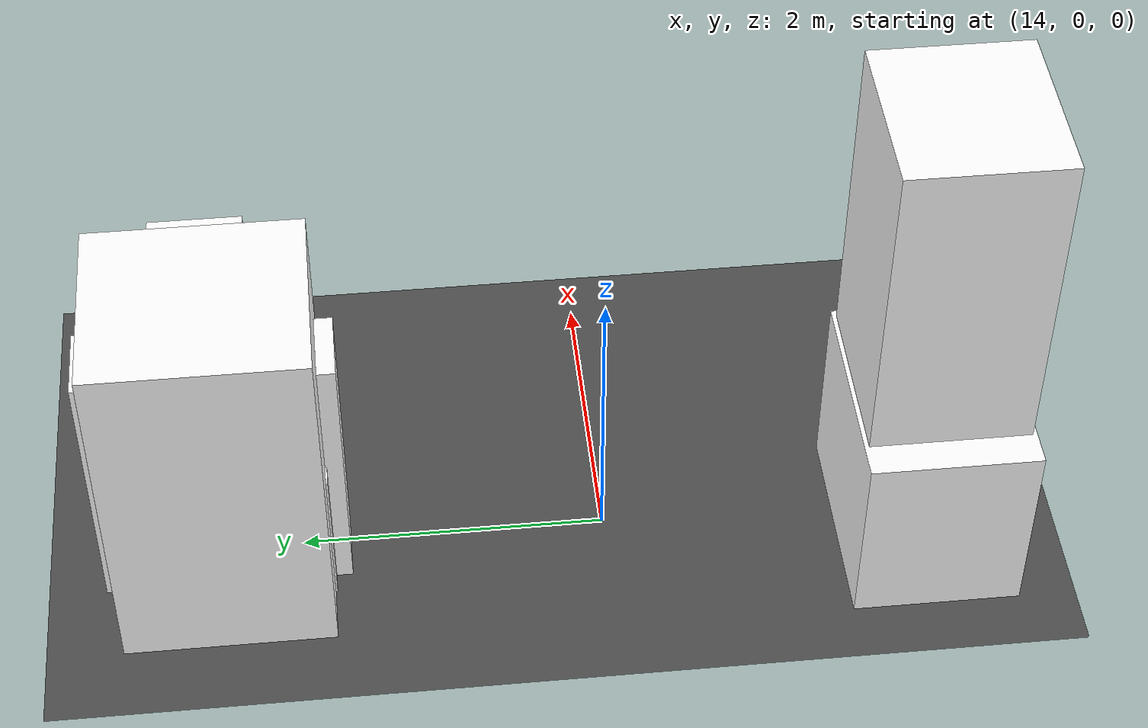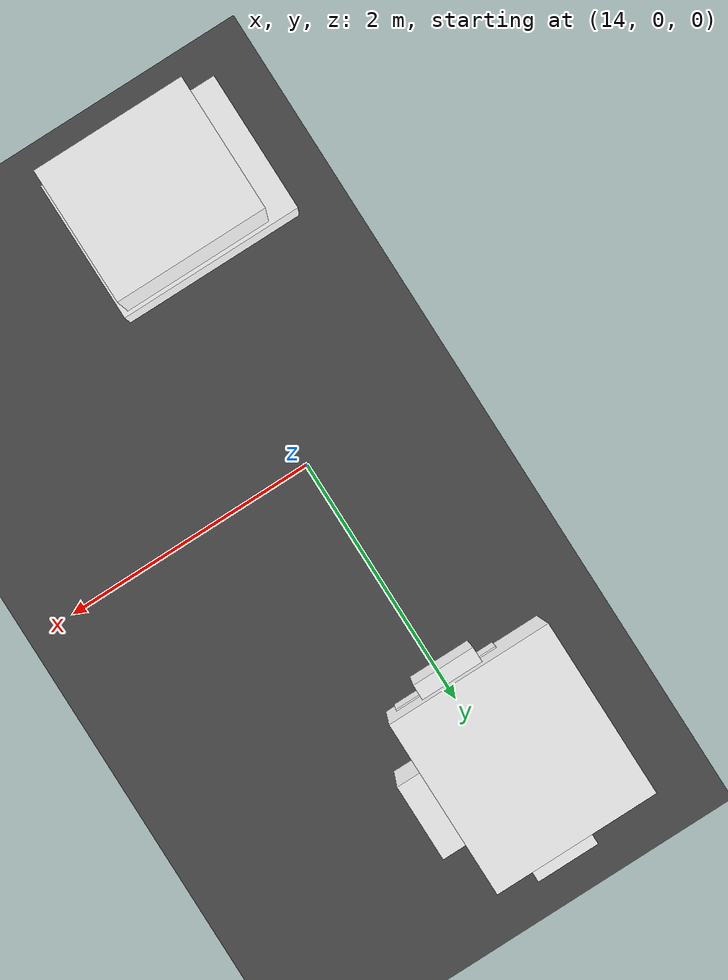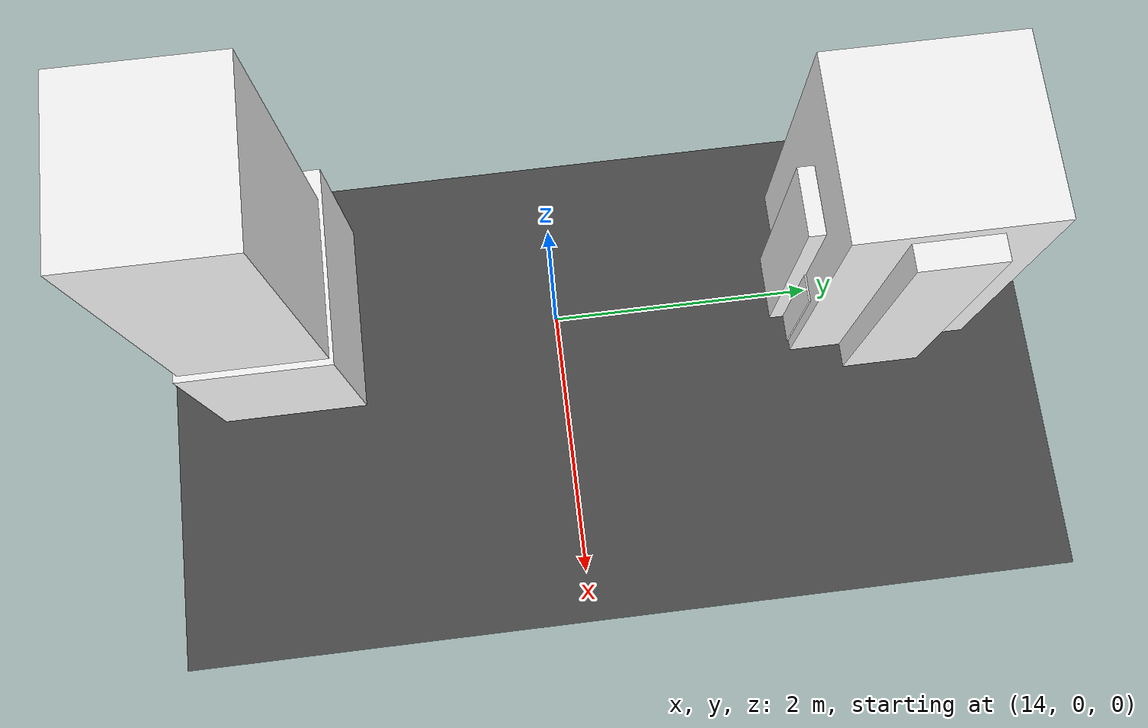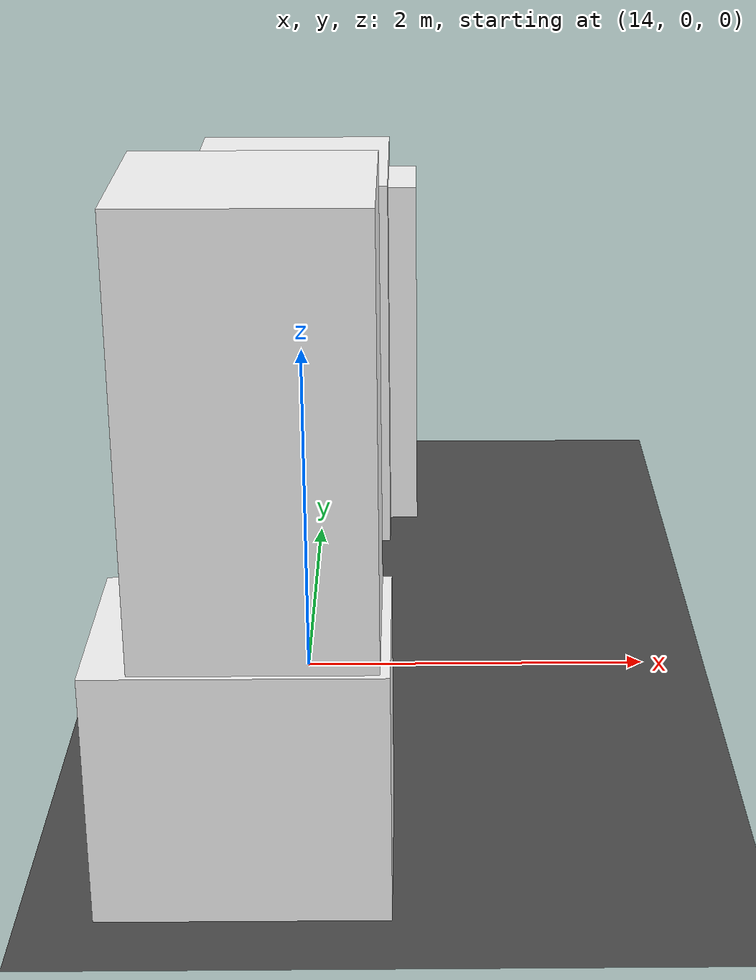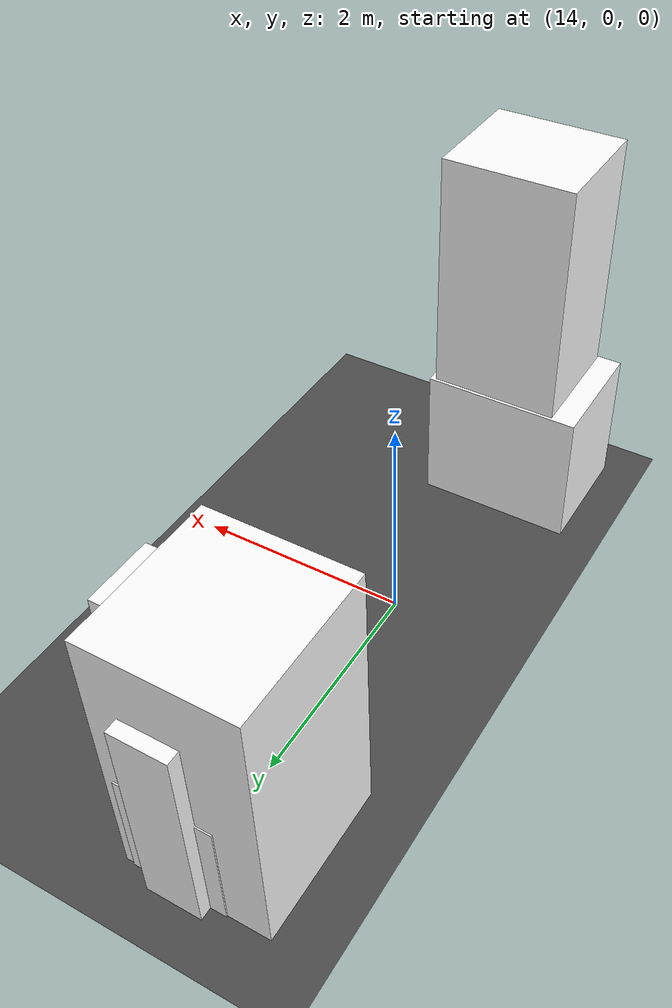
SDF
<sdf version="1.6">
 <world name="mirror_edge_world">
  <model name="ground_plane">
   <static>true</static>
   <link name="link">
    <collision name="collision">
     <geometry><plane><normal>0 0 1</normal><size>100 100</size></plane></geometry>
    </collision>
    <visual name="visual">
     <geometry><plane><normal>0 0 1</normal><size>100 100</size></plane></geometry>
     <material>
      <ambient>0.3 0.3 0.3 1</ambient>
      <diffuse>0.3 0.3 0.3 1</diffuse>
      <specular>0.5 0.5 0.5 1</specular>
      <emissive>0 0 0 1</emissive>
     </material>
    </visual>
   </link>
  </model>
  <model name="roadside_block_0_33_0">
   <static>true</static>
   <link name="link">
    <pose>14.03685832577998 2.496670991989923 1.1570486200003396 0 0 0</pose>
    <collision name="collision">
     <geometry><box><size>0.6228385740707574 0.9255280136743667 2.314097240000679</size></box></geometry>
    </collision>
    <visual name="visual">
     <geometry><box><size>0.6228385740707574 0.9255280136743667 2.314097240000679</size></box></geometry>
     <material>
      <ambient>1 1 1 1</ambient>
      <diffuse>1 1 1 1</diffuse>
      <specular>0.9 0.9 0.9 1</specular>
      <emissive>0.05 0.05 0.05 1</emissive>
     </material>
    </visual>
   </link>
  </model>
  <model name="roadside_block_0_34_0">
   <static>true</static>
   <link name="link">
    <pose>14.006944941712707 2.496670991989923 1.188061935720518 0 0 0</pose>
    <collision name="collision">
     <geometry><box><size>1.3027480677755388 0.5886401292115102 2.376123871441036</size></box></geometry>
    </collision>
    <visual name="visual">
     <geometry><box><size>1.3027480677755388 0.5886401292115102 2.376123871441036</size></box></geometry>
     <material>
      <ambient>1 1 1 1</ambient>
      <diffuse>1 1 1 1</diffuse>
      <specular>0.9 0.9 0.9 1</specular>
      <emissive>0.05 0.05 0.05 1</emissive>
     </material>
    </visual>
   </link>
  </model>
  <model name="roadside_block_0_35_0">
   <static>true</static>
   <link name="link">
    <pose>13.977031557645432 2.496670991989923 0.5318124189947162 0 0 0</pose>
    <collision name="collision">
     <geometry><box><size>0.8367509380353099 1.4007082193343676 1.0636248379894324</size></box></geometry>
    </collision>
    <visual name="visual">
     <geometry><box><size>0.8367509380353099 1.4007082193343676 1.0636248379894324</size></box></geometry>
     <material>
      <ambient>1 1 1 1</ambient>
      <diffuse>1 1 1 1</diffuse>
      <specular>0.9 0.9 0.9 1</specular>
      <emissive>0.05 0.05 0.05 1</emissive>
     </material>
    </visual>
   </link>
  </model>
  <model name="roadside_block_0_36_0">
   <static>true</static>
   <link name="link">
    <pose>13.94711817357816 2.496670991989923 0.9497441162747324 0 0 0</pose>
    <collision name="collision">
     <geometry><box><size>0.4918883372614281 1.615017338887788 1.8994882325494649</size></box></geometry>
    </collision>
    <visual name="visual">
     <geometry><box><size>0.4918883372614281 1.615017338887788 1.8994882325494649</size></box></geometry>
     <material>
      <ambient>1 1 1 1</ambient>
      <diffuse>1 1 1 1</diffuse>
      <specular>0.9 0.9 0.9 1</specular>
      <emissive>0.05 0.05 0.05 1</emissive>
     </material>
    </visual>
   </link>
  </model>
  <model name="roadside_block_0_37_0">
   <static>true</static>
   <link name="link">
    <pose>13.917204789510887 -2.1033290080100766 1.0584072953425065 0 0 0</pose>
    <collision name="collision">
     <geometry><box><size>0.6964117318178954 0.8002208739361418 2.116814590685013</size></box></geometry>
    </collision>
    <visual name="visual">
     <geometry><box><size>0.6964117318178954 0.8002208739361418 2.116814590685013</size></box></geometry>
     <material>
      <ambient>1 1 1 1</ambient>
      <diffuse>1 1 1 1</diffuse>
      <specular>0.9 0.9 0.9 1</specular>
      <emissive>0.05 0.05 0.05 1</emissive>
     </material>
    </visual>
   </link>
  </model>
  <model name="roadside_block_0_38_0">
   <static>true</static>
   <link name="link">
    <pose>13.887291405443612 -2.1033290080100766 1.7632251324552053 0 0 0</pose>
    <collision name="collision">
     <geometry><box><size>1.1709981385573196 1.040774772975726 3.5264502649104106</size></box></geometry>
    </collision>
    <visual name="visual">
     <geometry><box><size>1.1709981385573196 1.040774772975726 3.5264502649104106</size></box></geometry>
     <material>
      <ambient>1 1 1 1</ambient>
      <diffuse>1 1 1 1</diffuse>
      <specular>0.9 0.9 0.9 1</specular>
      <emissive>0.05 0.05 0.05 1</emissive>
     </material>
    </visual>
   </link>
  </model>
  <model name="roadside_block_0_39_0">
   <static>true</static>
   <link name="link">
    <pose>13.85737802137634 2.496670991989923 0.735019853168704 0 0 0</pose>
    <collision name="collision">
     <geometry><box><size>0.34471243845287913 0.3 1.470039706337408</size></box></geometry>
    </collision>
    <visual name="visual">
     <geometry><box><size>0.34471243845287913 0.3 1.470039706337408</size></box></geometry>
     <material>
      <ambient>1 1 1 1</ambient>
      <diffuse>1 1 1 1</diffuse>
      <specular>0.9 0.9 0.9 1</specular>
      <emissive>0.05 0.05 0.05 1</emissive>
     </material>
    </visual>
   </link>
  </model>
  <model name="roadside_block_0_40_0">
   <static>true</static>
   <link name="link">
    <pose>13.827464637309067 2.496670991989923 1.2438870976620098 0 0 0</pose>
    <collision name="collision">
     <geometry><box><size>1.2926374847787758 1.3771961713884877 2.4877741953240196</size></box></geometry>
    </collision>
    <visual name="visual">
     <geometry><box><size>1.2926374847787758 1.3771961713884877 2.4877741953240196</size></box></geometry>
     <material>
      <ambient>1 1 1 1</ambient>
      <diffuse>1 1 1 1</diffuse>
      <specular>0.9 0.9 0.9 1</specular>
      <emissive>0.05 0.05 0.05 1</emissive>
     </material>
    </visual>
   </link>
  </model>
  <model name="roadside_block_0_41_0">
   <static>true</static>
   <link name="link">
    <pose>13.797551253241792 -2.1033290080100766 0.65848462493064 0 0 0</pose>
    <collision name="collision">
     <geometry><box><size>1.4435154940410753 1.098541387947478 1.31696924986128</size></box></geometry>
    </collision>
    <visual name="visual">
     <geometry><box><size>1.4435154940410753 1.098541387947478 1.31696924986128</size></box></geometry>
     <material>
      <ambient>1 1 1 1</ambient>
      <diffuse>1 1 1 1</diffuse>
      <specular>0.9 0.9 0.9 1</specular>
      <emissive>0.05 0.05 0.05 1</emissive>
     </material>
    </visual>
   </link>
  </model>
 </world>
</sdf>
